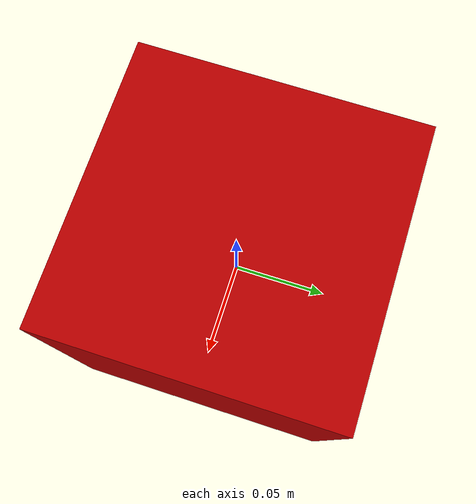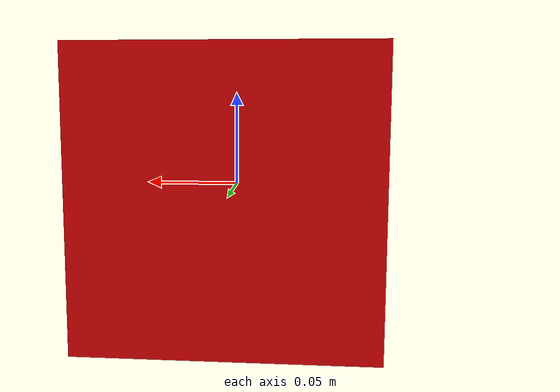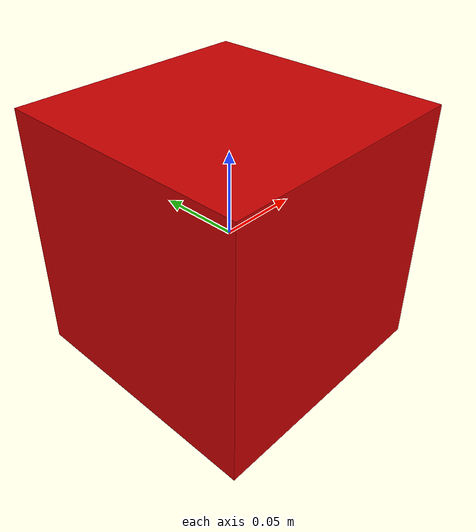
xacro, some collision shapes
<?xml version="1.0"?>
<robot xmlns:xacro="http://www.ros.org/wiki/xacro" name="Thrut_Vectoring_Drone">

    <xacro:property name="body_mass" value="0.8"/>
    <xacro:property name="fin_mass" value="0.006"/>
    <xacro:property name="package_name" value="drone_gazebo"/>

    <xacro:macro name="box_inertia" params="m x y z">
        <inertial>
            <mass value="${m}"/>
            <inertia ixx="${(m/12) * (y*y + z*z)}" ixy="0.0" ixz="0.0" iyy="${(m/12) * (x*x + z*z)}" iyz="0.0" izz="${(m/12) * (x*x + y*y)}"/>
        </inertial>
    </xacro:macro>

    <link name="base_link"></link>

    <joint name="base_to_body_joint" type="fixed">
        <parent link="base_link"/>
        <child link="body_drone"/>
        <origin xyz="0 0 0" rpy="0 0 0"/>
    </joint>

    <link name="body_drone">
        <visual>
            <origin xyz="-0.0625 0.0625 0.0" rpy="1.5708 0 0"/>
            <geometry>
                <mesh filename="$(find drone_gazebo)/component/drviz.stl" scale="0.001 0.001 0.001"/>
            </geometry>
            <material name="red">
                <color rgba="0.8 0.0 0.0 1.0"/>
            </material>
        </visual>
        <collision>
            <origin xyz="0 0 0" rpy="0 0 0"/>
            <geometry>
                <box size="0.15 0.15 0.15"/>
            </geometry>
        </collision>

        <inertial>
            <origin xyz="0 0 0" rpy="0 0 0"/>
            <mass value="${body_mass}"/>
            <inertia ixx="0.01" ixy="0.0" ixz="0.0" iyy="0.01" iyz="0.0" izz="0.02"/>
        </inertial>
    </link>

    <gazebo reference="body_drone">
        <material>Gazebo/Red</material>
    </gazebo>

    <link name="fin_1">
        <visual>
            <origin xyz="-0.0116 -0.00575 -0.025" rpy="0 0 0"/>
            <geometry>
                <mesh filename="$(find drone_gazebo)/component/fin_1.stl" scale="0.001 0.001 0.001"/>
            </geometry>
            <material name="black">
                <color rgba="1.0 1.0 1.0 1.0"/>
            </material>
        </visual>
        <collision>
            <origin xyz="0 0 0" rpy="0 0 0"/>
            <geometry>
                <box size="0.05 0.01 0.08"/>
            </geometry>
        </collision>
        <xacro:box_inertia m="${fin_mass}" x="0.05" y="0.01" z="0.08"/>
    </link>

    <joint name="fin_1_joint" type="revolute">
        <parent link="body_drone"/>
        <child link="fin_1"/>
        <origin xyz="0.029 0.0 0.048" rpy="0 1.5708 0"/>
        <axis xyz="0 0 1"/>
        <limit lower="-1.57" upper="1.57" effort="10" velocity="10"/>
        <dynamics damping="0.1" friction="0.1"/>
    </joint>

    <gazebo reference="fin_1">
        <material>Gazebo/Black</material>
    </gazebo>

    <link name="fin_2">
        <visual>
            <origin xyz="-0.0116 -0.00575 -0.025" rpy="0 0 0"/>
            <geometry>
                <mesh filename="$(find drone_gazebo)/component/fin_2.stl" scale="0.001 0.001 0.001"/>
            </geometry>
            <material name="black">
                <color rgba="1.0 1.0 1.0 1.0"/>
            </material>
        </visual>
        <collision>
            <origin xyz="0 0 0" rpy="0 0 0"/>
            <geometry>
                <box size="0.05 0.01 0.08"/>
            </geometry>
        </collision>
        <xacro:box_inertia m="${fin_mass}" x="0.05" y="0.01" z="0.08"/>
    </link>

    <joint name="fin_2_joint" type="revolute">
        <parent link="body_drone"/>
        <child link="fin_2"/>
        <origin xyz="-0.029 0.0 0.048" rpy="0 1.5708 3.14"/>
        <axis xyz="0 0 1"/>
        <limit lower="-1.57" upper="1.57" effort="10" velocity="10"/>
        <dynamics damping="0.1" friction="0.1"/>
    </joint>

    <gazebo reference="fin_2">
        <material>Gazebo/Black</material>
    </gazebo>

    <link name="fin_3">
        <visual>
            <origin xyz="-0.0116 -0.00575 -0.025" rpy="0 0 0"/>
            <geometry>
                <mesh filename="$(find drone_gazebo)/component/fin_3.stl" scale="0.001 0.001 0.001"/>
            </geometry>
            <material name="black">
                <color rgba="1.0 1.0 1.0 1.0"/>
            </material>
        </visual>
        <collision>
            <origin xyz="0 0 0" rpy="0 0 0"/>
            <geometry>
                <box size="0.05 0.01 0.08"/>
            </geometry>
        </collision>
        <xacro:box_inertia m="${fin_mass}" x="0.05" y="0.01" z="0.08"/>
    </link>

    <joint name="fin_3_joint" type="revolute">
        <parent link="body_drone"/>
        <child link="fin_3"/>
        <origin xyz="0.0 0.029 0.048" rpy="-1.5708 1.5708 0"/>
        <axis xyz="0 0 1"/>
        <limit lower="-1.57" upper="1.57" effort="10" velocity="10"/>
        <dynamics damping="0.1" friction="0.1"/>
    </joint>

    <gazebo reference="fin_3">
        <material>Gazebo/Black</material>
    </gazebo>

    <link name="fin_4">
        <visual>
            <origin xyz="-0.0116 -0.00575 -0.025" rpy="0 0 0"/>
            <geometry>
                <mesh filename="$(find drone_gazebo)/component/fin_4.stl" scale="0.001 0.001 0.001"/>
            </geometry>
            <material name="black">
                <color rgba="1.0 1.0 1.0 1.0"/>
            </material>
        </visual>
        <collision>
            <origin xyz="0 0 0" rpy="0 0 0"/>
            <geometry>
                <box size="0.05 0.01 0.08"/>
            </geometry>
        </collision>
        <xacro:box_inertia m="${fin_mass}" x="0.05" y="0.01" z="0.08"/>
    </link>

    <joint name="fin_4_joint" type="revolute">
        <parent link="body_drone"/>
        <child link="fin_4"/>
        <origin xyz="0.0 -0.029 0.048" rpy="1.5708 1.5708 0"/>
        <axis xyz="0 0 1"/>
        <limit lower="-1.57" upper="1.57" effort="10" velocity="10"/>
        <dynamics damping="0.1" friction="0.1"/>
    </joint>

    <gazebo reference="fin_4">
        <material>Gazebo/Black</material>
    </gazebo>

    <gazebo>
        <plugin name="fin_1_aerodynamics" filename="libLiftDragPlugin.so">
            <a0>0.05</a0>
            <cla>4.0</cla>
            <cda>0.01</cda>
            <cma>0.00</cma>
            <alpha_stall>0.6</alpha_stall>
            <cla_stall>-0.2</cla_stall>
            <cda_stall>1.0</cda_stall>
            <cp>0 0 0</cp>
            <area>0.004</area>
            <air_density>1.2041</air_density>
            <forward>1 0 0</forward>
            <upward>0 0 1</upward>
            <link_name>fin_1</link_name>
        </plugin>

        <plugin name="fin_2_aerodynamics" filename="libLiftDragPlugin.so">
            <a0>0.05</a0>
            <cla>4.0</cla>
            <cda>0.01</cda>
            <cma>0.00</cma>
            <alpha_stall>0.6</alpha_stall>
            <cla_stall>-0.2</cla_stall>
            <cda_stall>1.0</cda_stall>
            <cp>0 0 0</cp>
            <area>0.004</area>
            <air_density>1.2041</air_density>
            <forward>1 0 0</forward>
            <upward>0 0 1</upward>
            <link_name>fin_2</link_name>
        </plugin>

        <plugin name="fin_3_aerodynamics" filename="libLiftDragPlugin.so">
            <a0>0.05</a0>
            <cla>4.0</cla>
            <cda>0.01</cda>
            <cma>0.00</cma>
            <alpha_stall>0.6</alpha_stall>
            <cla_stall>-0.2</cla_stall>
            <cda_stall>1.0</cda_stall>
            <cp>0 0 0</cp>
            <area>0.004</area>
            <air_density>1.2041</air_density>
            <forward>1 0 0</forward>
            <upward>0 0 1</upward>
            <link_name>fin_3</link_name>
        </plugin>

        <plugin name="fin_4_aerodynamics" filename="libLiftDragPlugin.so">
            <a0>0.05</a0>
            <cla>4.0</cla>
            <cda>0.01</cda>
            <cma>0.00</cma>
            <alpha_stall>0.6</alpha_stall>
            <cla_stall>-0.2</cla_stall>
            <cda_stall>1.0</cda_stall>
            <cp>0 0 0</cp>
            <area>0.004</area>
            <air_density>1.2041</air_density>
            <forward>1 0 0</forward>
            <upward>0 0 1</upward>
            <link_name>fin_4</link_name>
        </plugin>
    </gazebo>

    <gazebo>
        <plugin name="gazebo_ros_joint_state_publisher" filename="libgazebo_ros_joint_state_publisher.so">
            <update_rate>50</update_rate>
            <joint_name>fin_1_joint</joint_name>
            <joint_name>fin_2_joint</joint_name>
            <joint_name>fin_3_joint</joint_name>
            <joint_name>fin_4_joint</joint_name>
        </plugin>

        <plugin name="gazebo_ros_force" filename="libgazebo_ros_force.so">
            <ros>
                <namespace>/drone</namespace>
                <remapping>gazebo_ros_force:=thrust</remapping>
            </ros>
            <link_name>base_link</link_name>
            <force_frame>link</force_frame>
        </plugin>

        <plugin name="drone_fin_1_controller" filename="libgazebo_ros_joint_position_controller.so">
            <ros>
                <namespace>/drone</namespace>
                <remapping>joint_position_controller:=fin_1/position</remapping>
            </ros>
            <joint_name>fin_1_joint</joint_name>
            <pid_gain>100 1 10</pid_gain>
            <initial_velocity>0.0</initial_velocity>
        </plugin>

        <plugin name="drone_fin_2_controller" filename="libgazebo_ros_joint_position_controller.so">
            <ros>
                <namespace>/drone</namespace>
                <remapping>joint_position_controller:=fin_2/position</remapping>
            </ros>
            <joint_name>fin_2_joint</joint_name>
            <pid_gain>100 1 10</pid_gain>
            <initial_velocity>0.0</initial_velocity>
        </plugin>

        <plugin name="drone_fin_3_controller" filename="libgazebo_ros_joint_position_controller.so">
            <ros>
                <namespace>/drone</namespace>
                <remapping>joint_position_controller:=fin_3/position</remapping>
            </ros>
            <joint_name>fin_3_joint</joint_name>
            <pid_gain>100 1 10</pid_gain>
            <initial_velocity>0.0</initial_velocity>
        </plugin>

        <plugin name="drone_fin_4_controller" filename="libgazebo_ros_joint_position_controller.so">
            <ros>
                <namespace>/drone</namespace>
                <remapping>joint_position_controller:=fin_4/position</remapping>
            </ros>
            <joint_name>fin_4_joint</joint_name>
            <pid_gain>100 1 10</pid_gain>
            <initial_velocity>0.0</initial_velocity>
        </plugin>

        <plugin name="p3d_base_controller" filename="libgazebo_ros_p3d.so">
            <ros>
                <remapping>odom:=/odom</remapping>
            </ros>
            <body_name>base_link</body_name>
            <frame_name>world</frame_name>
            <update_rate>100.0</update_rate>
            <xyz_offset>0 0 0</xyz_offset>
            <rpy_offset>0 0 0</rpy_offset>
            <gaussian_noise>0.00</gaussian_noise>
        </plugin>

    </gazebo>

</robot>
